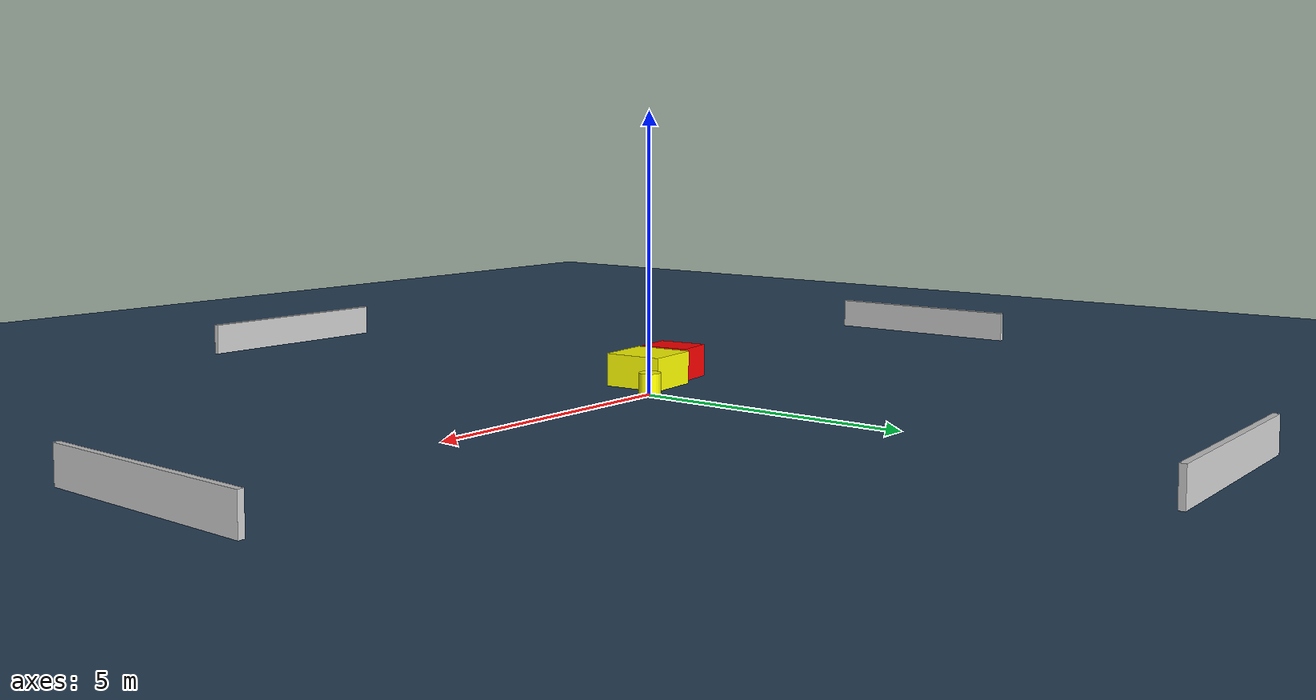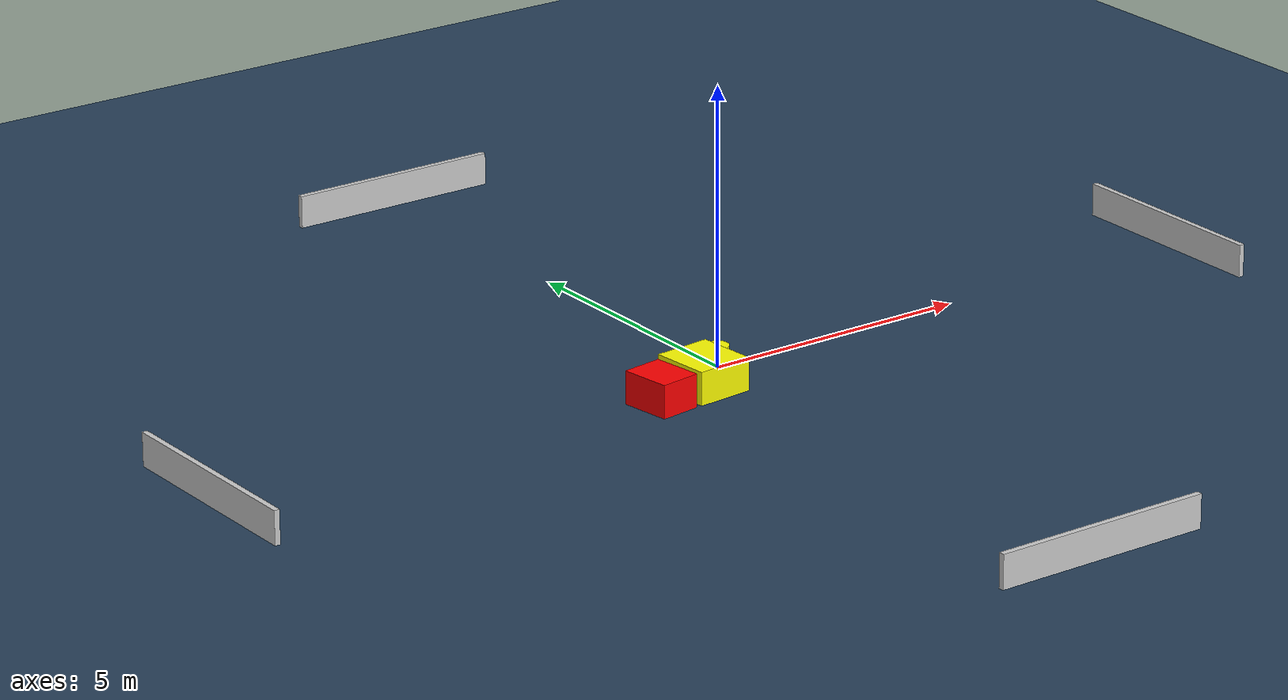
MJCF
<?xml version="1.0" ?>
<mujoco model="generated_environment">
  <option timestep="0.01" integrator="RK4" cone="elliptic"/>
  <default>
    <geom density="1"/>
  </default>
  <asset>
    <texture builtin="gradient" height="3072" name="skybox" rgb1="0.3 0.5 0.7" rgb2="0 0 0" type="skybox" width="512"/>
    <texture builtin="checker" height="300" name="groundplane" rgb1="0.2 0.3 0.4" rgb2="0.1 0.2 0.3" type="2d" width="300"/>
    <material name="groundplane" reflectance="0.2" texrepeat="5 5" texture="groundplane"/>
  </asset>
  <worldbody>
    <light dir="0 0 -1" directional="true" pos="0 0 1.5"/>
    <geom condim="3" friction="0.5 0.005 0.001" material="groundplane" name="floor" pos="0 0 0" size="0 0 0.05" type="plane"/>
    <body name="walls">
      <geom name="wall_1" condim="4" pos="-10.0 0.0 0.3" rgba="0.800000011920929 0.800000011920929 0.800000011920929 1.0" size="0.05 2.0 0.3" type="box"/>
      <geom name="wall_2" condim="4" pos="10.0 0.0 0.3" rgba="0.800000011920929 0.800000011920929 0.800000011920929 1.0" size="0.05 2.0 0.3" type="box"/>
      <geom name="wall_3" condim="4" pos="0.0 -10.0 0.3" rgba="0.800000011920929 0.800000011920929 0.800000011920929 1.0" size="2.0 0.05 0.3" type="box"/>
      <geom name="wall_4" condim="4" pos="0.0 10.0 0.3" rgba="0.800000011920929 0.800000011920929 0.800000011920929 1.0" size="2.0 0.05 0.3" type="box"/>
    </body>
    <body name="robot">
      <joint name="joint_x" type="slide" pos="0 0 0" axis="1 0 0"/>
      <joint name="joint_y" type="slide" pos="0 0 0" axis="0 1 0"/>
      <geom name="robot" type="cylinder" pos="0.0 0.0 0.2" size="0.2 0.2 0.0" mass="5.0" friction="1.0 0.005 0.0001" condim="4" rgba="1.0 1.0 0.0 1.0"/>
    </body>
    <body name="obstacle_1_movable">
      <geom name="obstacle_1_movable" condim="4" pos="-0.7900440207436614 -0.668931659949248 0.3" euler="0 0 94.9449566290065" friction="0.0 0.005 0.001" rgba="1.0 1.0 0.0 1.0" size="0.5490502494362146 0.5221031960926459 0.3" type="box" mass="0.1"/>
      <joint type="free"/>
    </body>
    <body name="obstacle_2_static">
      <geom name="obstacle_2_static" condim="4" pos="-1.7952078635223636 -0.8552672270880685 0.3" euler="0 0 8.059801027428666" friction="0.0 0.005 0.001" rgba="1.0 0.0 0.0 1.0" size="0.37342128123916674 0.4632679362658127 0.3" type="box"/>
    </body>
  </worldbody>
  <actuator>
    <motor name="actuator_x" joint="joint_x" gear="1" ctrlrange="-1 1"/>
    <motor name="actuator_y" joint="joint_y" gear="1" ctrlrange="-1 1"/>
  </actuator>
</mujoco>
